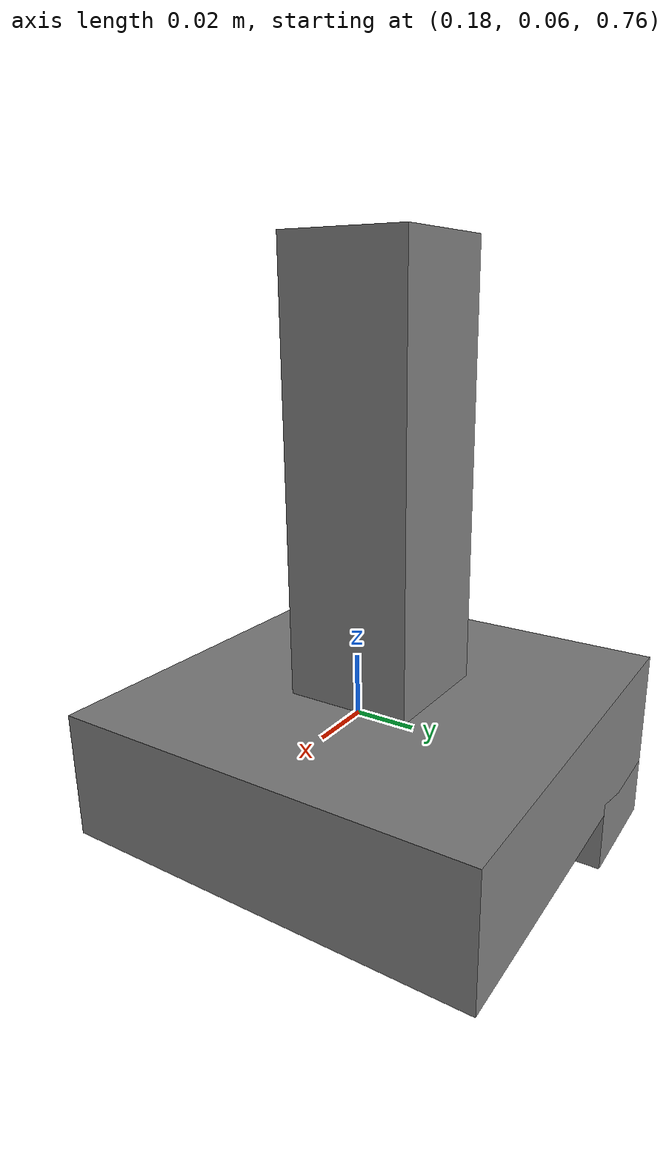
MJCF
<mujoco model="peg_with_base">
  <asset>
    <texture file="../textures/red-wood.png" type="cube" name="red-wood"/>
    <material name="red-wood"  reflectance="1.0" shininess="1.0" specular="1.0" texrepeat="3 3" texture="red-wood" texuniform="true"/>
  </asset>
  <worldbody>
    <body>
      <body name="object" pos="0.23 0.1 0.85">
        <geom pos="-0.035 0 -0.08" size="0.015 0.05 0.015" type="box" group="0" friction="1 0.005 0.0001" density="100"/>
        <geom pos="-0.035 0 -0.08" size="0.015 0.05 0.015" type="box" conaffinity="0" contype="0" group="1" material="red-wood" />
        <geom pos="0 0 -0.065" size="0.05 0.05 0.015" type="box" group="0" friction="1 0.005 0.0001" density="100"/>
        <geom pos="0 0 -0.065" size="0.05 0.05 0.015" type="box" conaffinity="0" contype="0" group="1" material="red-wood" />
        <geom pos="0 0 0" size="0.015 0.015 0.05" type="box" group="0" friction="1 0.005 0.0001" density="100"/>
        <geom pos="0 0 0" size="0.015 0.015 0.05" type="box" conaffinity="0" contype="0" group="1" material="red-wood" />
      </body>
      <site rgba="0 0 0 0" size="0.005" pos="0 0 -0.095" name="bottom_site"/>
      <site rgba="0 0 0 0" size="0.005" pos="0 0 0.04" name="top_site"/>
      <site rgba="0 0 0 0" size="0.005" pos="0.01 0.01 0" name="horizontal_radius_site"/>
    </body>
  </worldbody>
</mujoco>
